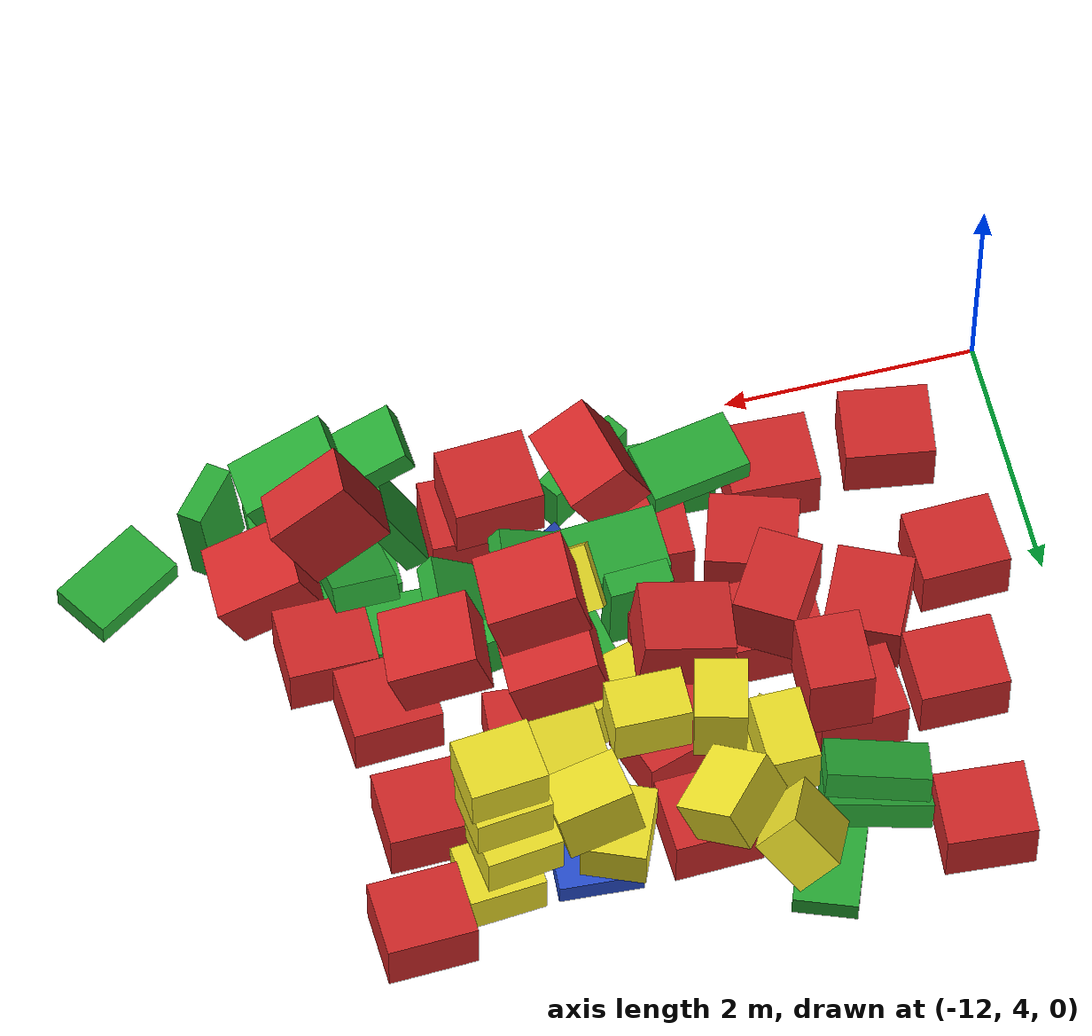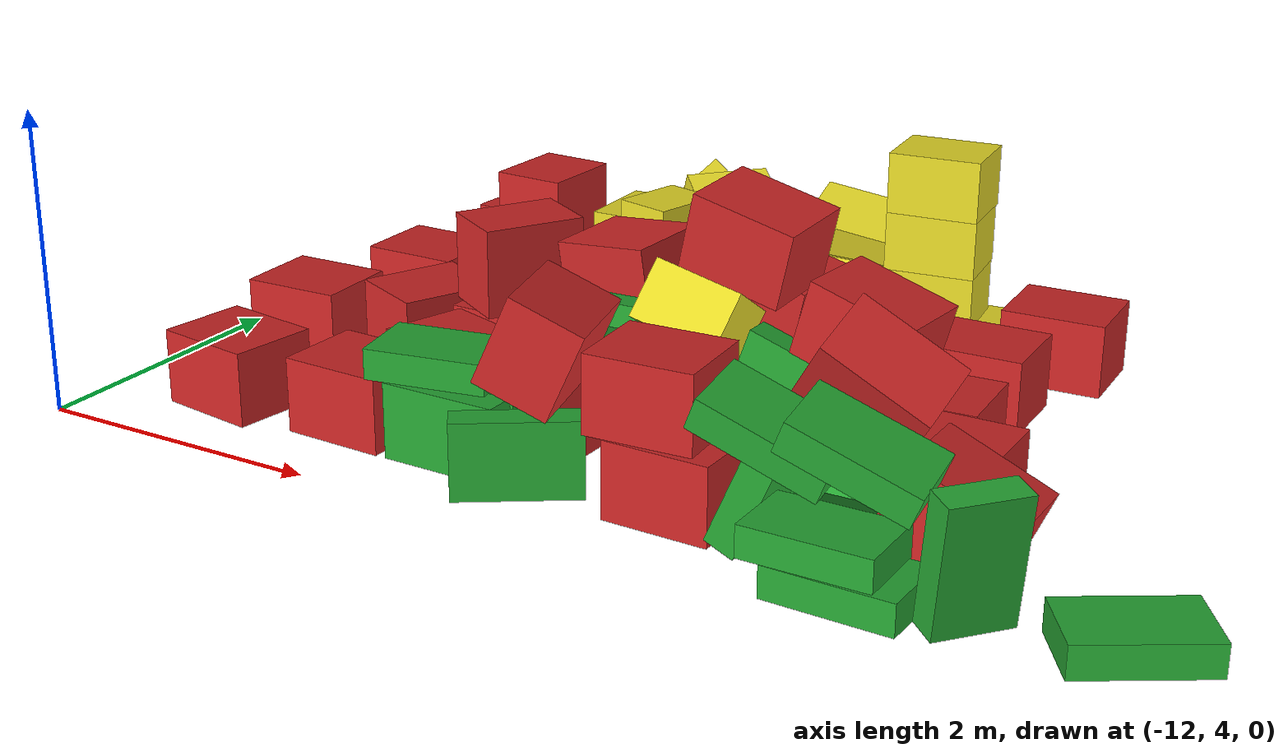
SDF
<sdf version="1.6">
 <world name="default">
  <model name="baggage_A_clone_17">
   <static>0</static>
   <link name="link">
    <collision name="collision"><geometry><box><size>0.7 0.6 0.5</size></box></geometry></collision>
    <visual name="visual">
     <geometry><box><size>0.7 0.6 0.5</size></box></geometry>
     <material>
      <script><uri>file://media/materials/scripts/gazebo.material</uri><name>Gazebo/Red</name></script>
     </material>
    </visual>
    <inertial>
     <inertia><ixx>1</ixx><ixy>0</ixy><ixz>0</ixz><iyy>1</iyy><iyz>0</iyz><izz>1</izz></inertia>
     <mass>1</mass>
    </inertial>
   </link>
   <pose>-9.79374 6.12698 0.249929 5e-06 -8e-06 -0.018931</pose>
  </model>
  <model name="baggage_A_clone_18">
   <static>0</static>
   <link name="link">
    <collision name="collision"><geometry><box><size>0.7 0.6 0.5</size></box></geometry></collision>
    <visual name="visual">
     <geometry><box><size>0.7 0.6 0.5</size></box></geometry>
     <material>
      <script><uri>file://media/materials/scripts/gazebo.material</uri><name>Gazebo/Red</name></script>
     </material>
    </visual>
    <inertial>
     <inertia><ixx>1</ixx><ixy>0</ixy><ixz>0</ixz><iyy>1</iyy><iyz>0</iyz><izz>1</izz></inertia>
     <mass>1</mass>
    </inertial>
   </link>
   <pose>-8.80249 6.86566 0.249981 0 1e-06 0.308612</pose>
  </model>
  <model name="baggage_A_clone_19">
   <static>0</static>
   <link name="link">
    <collision name="collision"><geometry><box><size>0.7 0.6 0.5</size></box></geometry></collision>
    <visual name="visual">
     <geometry><box><size>0.7 0.6 0.5</size></box></geometry>
     <material>
      <script><uri>file://media/materials/scripts/gazebo.material</uri><name>Gazebo/Red</name></script>
     </material>
    </visual>
    <inertial>
     <inertia><ixx>1</ixx><ixy>0</ixy><ixz>0</ixz><iyy>1</iyy><iyz>0</iyz><izz>1</izz></inertia>
     <mass>1</mass>
    </inertial>
   </link>
   <pose>-8.91154 7.62588 0.249957 -2.1e-05 -7.6e-05 0.033002</pose>
  </model>
  <model name="baggage_A_clone_25">
   <static>0</static>
   <link name="link">
    <collision name="collision"><geometry><box><size>0.7 0.6 0.5</size></box></geometry></collision>
    <visual name="visual">
     <geometry><box><size>0.7 0.6 0.5</size></box></geometry>
     <material>
      <script><uri>file://media/materials/scripts/gazebo.material</uri><name>Gazebo/Red</name></script>
     </material>
    </visual>
    <inertial>
     <inertia><ixx>1</ixx><ixy>0</ixy><ixz>0</ixz><iyy>1</iyy><iyz>0</iyz><izz>1</izz></inertia>
     <mass>1</mass>
    </inertial>
   </link>
   <pose>-10.2258 6.91814 0.24999 -2e-06 -0 0.043237</pose>
  </model>
  <model name="baggage_A_clone_26">
   <static>0</static>
   <link name="link">
    <collision name="collision"><geometry><box><size>0.7 0.6 0.5</size></box></geometry></collision>
    <visual name="visual">
     <geometry><box><size>0.7 0.6 0.5</size></box></geometry>
     <material>
      <script><uri>file://media/materials/scripts/gazebo.material</uri><name>Gazebo/Red</name></script>
     </material>
    </visual>
    <inertial>
     <inertia><ixx>1</ixx><ixy>0</ixy><ixz>0</ixz><iyy>1</iyy><iyz>0</iyz><izz>1</izz></inertia>
     <mass>1</mass>
    </inertial>
   </link>
   <pose>-10.126 4.78046 0.249901 -1e-05 2.6e-05 -0.041728</pose>
  </model>
  <model name="baggage_A_clone_27">
   <static>0</static>
   <link name="link">
    <collision name="collision"><geometry><box><size>0.7 0.6 0.5</size></box></geometry></collision>
    <visual name="visual">
     <geometry><box><size>0.7 0.6 0.5</size></box></geometry>
     <material>
      <script><uri>file://media/materials/scripts/gazebo.material</uri><name>Gazebo/Red</name></script>
     </material>
    </visual>
    <inertial>
     <inertia><ixx>1</ixx><ixy>0</ixy><ixz>0</ixz><iyy>1</iyy><iyz>0</iyz><izz>1</izz></inertia>
     <mass>1</mass>
    </inertial>
   </link>
   <pose>-9.02698 5.1596 0.249131 -0.000162 0.000222 -0.046116</pose>
  </model>
  <model name="baggage_A_clone_28">
   <static>0</static>
   <link name="link">
    <collision name="collision"><geometry><box><size>0.7 0.6 0.5</size></box></geometry></collision>
    <visual name="visual">
     <geometry><box><size>0.7 0.6 0.5</size></box></geometry>
     <material>
      <script><uri>file://media/materials/scripts/gazebo.material</uri><name>Gazebo/Red</name></script>
     </material>
    </visual>
    <inertial>
     <inertia><ixx>1</ixx><ixy>0</ixy><ixz>0</ixz><iyy>1</iyy><iyz>0</iyz><izz>1</izz></inertia>
     <mass>1</mass>
    </inertial>
   </link>
   <pose>-6.45215 5.49884 0.250311 3.4e-05 3.4e-05 0.002134</pose>
  </model>
  <model name="baggage_A_clone_29">
   <static>0</static>
   <link name="link">
    <collision name="collision"><geometry><box><size>0.7 0.6 0.5</size></box></geometry></collision>
    <visual name="visual">
     <geometry><box><size>0.7 0.6 0.5</size></box></geometry>
     <material>
      <script><uri>file://media/materials/scripts/gazebo.material</uri><name>Gazebo/Red</name></script>
     </material>
    </visual>
    <inertial>
     <inertia><ixx>1</ixx><ixy>0</ixy><ixz>0</ixz><iyy>1</iyy><iyz>0</iyz><izz>1</izz></inertia>
     <mass>1</mass>
    </inertial>
   </link>
   <pose>-6.12069 4.83426 0.36845 -0.003386 0.404213 -0.007979</pose>
  </model>
  <model name="baggage_A_clone_30">
   <static>0</static>
   <link name="link">
    <collision name="collision"><geometry><box><size>0.7 0.6 0.5</size></box></geometry></collision>
    <visual name="visual">
     <geometry><box><size>0.7 0.6 0.5</size></box></geometry>
     <material>
      <script><uri>file://media/materials/scripts/gazebo.material</uri><name>Gazebo/Red</name></script>
     </material>
    </visual>
    <inertial>
     <inertia><ixx>1</ixx><ixy>0</ixy><ixz>0</ixz><iyy>1</iyy><iyz>0</iyz><izz>1</izz></inertia>
     <mass>1</mass>
    </inertial>
   </link>
   <pose>-8.02816 6.32171 0.824028 0.051436 0.229666 -0.025103</pose>
  </model>
  <model name="baggage_A_clone_31">
   <static>0</static>
   <link name="link">
    <collision name="collision"><geometry><box><size>0.7 0.6 0.5</size></box></geometry></collision>
    <visual name="visual">
     <geometry><box><size>0.7 0.6 0.5</size></box></geometry>
     <material>
      <script><uri>file://media/materials/scripts/gazebo.material</uri><name>Gazebo/Red</name></script>
     </material>
    </visual>
    <inertial>
     <inertia><ixx>1</ixx><ixy>0</ixy><ixz>0</ixz><iyy>1</iyy><iyz>0</iyz><izz>1</izz></inertia>
     <mass>1</mass>
    </inertial>
   </link>
   <pose>-6.8552 7.05261 0.25 0 -0 0.019205</pose>
  </model>
  <model name="baggage_A_clone_32">
   <static>0</static>
   <link name="link">
    <collision name="collision"><geometry><box><size>0.7 0.6 0.5</size></box></geometry></collision>
    <visual name="visual">
     <geometry><box><size>0.7 0.6 0.5</size></box></geometry>
     <material>
      <script><uri>file://media/materials/scripts/gazebo.material</uri><name>Gazebo/Red</name></script>
     </material>
    </visual>
    <inertial>
     <inertia><ixx>1</ixx><ixy>0</ixy><ixz>0</ixz><iyy>1</iyy><iyz>0</iyz><izz>1</izz></inertia>
     <mass>1</mass>
    </inertial>
   </link>
   <pose>-6.61565 7.93767 0.25 0 -0 0.036213</pose>
  </model>
  <model name="baggage_A_clone_39">
   <static>0</static>
   <link name="link">
    <collision name="collision"><geometry><box><size>0.7 0.6 0.5</size></box></geometry></collision>
    <visual name="visual">
     <geometry><box><size>0.7 0.6 0.5</size></box></geometry>
     <material>
      <script><uri>file://media/materials/scripts/gazebo.material</uri><name>Gazebo/Red</name></script>
     </material>
    </visual>
    <inertial>
     <inertia><ixx>1</ixx><ixy>0</ixy><ixz>0</ixz><iyy>1</iyy><iyz>0</iyz><izz>1</izz></inertia>
     <mass>1</mass>
    </inertial>
   </link>
   <pose>-10.9255 8.11501 0.249979 -1e-06 -6e-06 -0.077838</pose>
  </model>
  <model name="baggage_A_clone_40">
   <static>0</static>
   <link name="link">
    <collision name="collision"><geometry><box><size>0.7 0.6 0.5</size></box></geometry></collision>
    <visual name="visual">
     <geometry><box><size>0.7 0.6 0.5</size></box></geometry>
     <material>
      <script><uri>file://media/materials/scripts/gazebo.material</uri><name>Gazebo/Red</name></script>
     </material>
    </visual>
    <inertial>
     <inertia><ixx>1</ixx><ixy>0</ixy><ixz>0</ixz><iyy>1</iyy><iyz>0</iyz><izz>1</izz></inertia>
     <mass>1</mass>
    </inertial>
   </link>
   <pose>-11.0467 6.86079 0.250001 -1e-06 1e-06 -0.008004</pose>
  </model>
  <model name="baggage_A_clone_41">
   <static>0</static>
   <link name="link">
    <collision name="collision"><geometry><box><size>0.7 0.6 0.5</size></box></geometry></collision>
    <visual name="visual">
     <geometry><box><size>0.7 0.6 0.5</size></box></geometry>
     <material>
      <script><uri>file://media/materials/scripts/gazebo.material</uri><name>Gazebo/Red</name></script>
     </material>
    </visual>
    <inertial>
     <inertia><ixx>1</ixx><ixy>0</ixy><ixz>0</ixz><iyy>1</iyy><iyz>0</iyz><izz>1</izz></inertia>
     <mass>1</mass>
    </inertial>
   </link>
   <pose>-11.3272 5.84974 0.249945 1e-06 -1e-06 0.026746</pose>
  </model>
  <model name="baggage_A_clone_42">
   <static>0</static>
   <link name="link">
    <collision name="collision"><geometry><box><size>0.7 0.6 0.5</size></box></geometry></collision>
    <visual name="visual">
     <geometry><box><size>0.7 0.6 0.5</size></box></geometry>
     <material>
      <script><uri>file://media/materials/scripts/gazebo.material</uri><name>Gazebo/Red</name></script>
     </material>
    </visual>
    <inertial>
     <inertia><ixx>1</ixx><ixy>0</ixy><ixz>0</ixz><iyy>1</iyy><iyz>0</iyz><izz>1</izz></inertia>
     <mass>1</mass>
    </inertial>
   </link>
   <pose>-6.79574 6.10009 0.25 0 -0 0.047969</pose>
  </model>
  <model name="baggage_B_clone_45">
   <static>0</static>
   <link name="link">
    <collision name="collision"><geometry><box><size>0.65 0.45 0.2</size></box></geometry></collision>
    <visual name="visual">
     <geometry><box><size>0.65 0.45 0.2</size></box></geometry>
     <material>
      <script><uri>file://media/materials/scripts/gazebo.material</uri><name>Gazebo/Blue</name></script>
     </material>
    </visual>
    <inertial>
     <inertia><ixx>1</ixx><ixy>0</ixy><ixz>0</ixz><iyy>1</iyy><iyz>0</iyz><izz>1</izz></inertia>
     <mass>1</mass>
    </inertial>
   </link>
   <pose>-8.01894 7.69114 0.100031 9e-05 3.7e-05 -0.06603</pose>
  </model>
  <model name="baggage_C_clone_37">
   <static>0</static>
   <link name="link">
    <collision name="collision"><geometry><box><size>0.6 0.5 0.4</size></box></geometry></collision>
    <visual name="visual">
     <geometry><box><size>0.6 0.5 0.4</size></box></geometry>
     <material>
      <script><uri>file://media/materials/scripts/gazebo.material</uri><name>Gazebo/Yellow</name></script>
     </material>
    </visual>
    <inertial>
     <inertia><ixx>1</ixx><ixy>0</ixy><ixz>0</ixz><iyy>1</iyy><iyz>0</iyz><izz>1</izz></inertia>
     <mass>1</mass>
    </inertial>
   </link>
   <pose>-9.50047 8.10353 0.635157 2.40941 -0.51568 1.15252</pose>
  </model>
  <model name="baggage_D_clone_27">
   <static>0</static>
   <link name="link">
    <collision name="collision"><geometry><box><size>0.8 0.5 0.2</size></box></geometry></collision>
    <visual name="visual">
     <geometry><box><size>0.8 0.5 0.2</size></box></geometry>
     <material>
      <script><uri>file://media/materials/scripts/gazebo.material</uri><name>Gazebo/Green</name></script>
     </material>
    </visual>
    <inertial>
     <inertia><ixx>1</ixx><ixy>0</ixy><ixz>0</ixz><iyy>1</iyy><iyz>0</iyz><izz>1</izz></inertia>
     <mass>1</mass>
    </inertial>
   </link>
   <pose>-9.72905 8.12186 0.1 3.14159 0 1.20134</pose>
  </model>
  <model name="baggage_D_clone_34">
   <static>0</static>
   <link name="link">
    <collision name="collision"><geometry><box><size>0.8 0.5 0.2</size></box></geometry></collision>
    <visual name="visual">
     <geometry><box><size>0.8 0.5 0.2</size></box></geometry>
     <material>
      <script><uri>file://media/materials/scripts/gazebo.material</uri><name>Gazebo/Green</name></script>
     </material>
    </visual>
    <inertial>
     <inertia><ixx>1</ixx><ixy>0</ixy><ixz>0</ixz><iyy>1</iyy><iyz>0</iyz><izz>1</izz></inertia>
     <mass>1</mass>
    </inertial>
   </link>
   <pose>-10.1821 7.75333 0.253972 0.491393 -0.123812 -0.189772</pose>
  </model>
  <model name="baggage_D_clone_38">
   <static>0</static>
   <link name="link">
    <collision name="collision"><geometry><box><size>0.8 0.5 0.2</size></box></geometry></collision>
    <visual name="visual">
     <geometry><box><size>0.8 0.5 0.2</size></box></geometry>
     <material>
      <script><uri>file://media/materials/scripts/gazebo.material</uri><name>Gazebo/Green</name></script>
     </material>
    </visual>
    <inertial>
     <inertia><ixx>1</ixx><ixy>0</ixy><ixz>0</ixz><iyy>1</iyy><iyz>0</iyz><izz>1</izz></inertia>
     <mass>1</mass>
    </inertial>
   </link>
   <pose>-10.2224 7.59342 0.392592 -2.64298 -0.086966 -0.258376</pose>
  </model>
  <model name="baggage_D_clone_72">
   <static>0</static>
   <link name="link">
    <collision name="collision"><geometry><box><size>0.8 0.5 0.2</size></box></geometry></collision>
    <visual name="visual">
     <geometry><box><size>0.8 0.5 0.2</size></box></geometry>
     <material>
      <script><uri>file://media/materials/scripts/gazebo.material</uri><name>Gazebo/Green</name></script>
     </material>
    </visual>
    <inertial>
     <inertia><ixx>1</ixx><ixy>0</ixy><ixz>0</ixz><iyy>1</iyy><iyz>0</iyz><izz>1</izz></inertia>
     <mass>1</mass>
    </inertial>
   </link>
   <pose>-5.8446 4.26692 0.409243 -3.14157 1.44749 2.44253</pose>
  </model>
  <model name="baggage_D_clone_73">
   <static>0</static>
   <link name="link">
    <collision name="collision"><geometry><box><size>0.8 0.5 0.2</size></box></geometry></collision>
    <visual name="visual">
     <geometry><box><size>0.8 0.5 0.2</size></box></geometry>
     <material>
      <script><uri>file://media/materials/scripts/gazebo.material</uri><name>Gazebo/Green</name></script>
     </material>
    </visual>
    <inertial>
     <inertia><ixx>1</ixx><ixy>0</ixy><ixz>0</ixz><iyy>1</iyy><iyz>0</iyz><izz>1</izz></inertia>
     <mass>1</mass>
    </inertial>
   </link>
   <pose>-6.53134 4.25563 0.09976 2.6e-05 7e-06 -0.035317</pose>
  </model>
  <model name="baggage_D_clone_75">
   <static>0</static>
   <link name="link">
    <collision name="collision"><geometry><box><size>0.8 0.5 0.2</size></box></geometry></collision>
    <visual name="visual">
     <geometry><box><size>0.8 0.5 0.2</size></box></geometry>
     <material>
      <script><uri>file://media/materials/scripts/gazebo.material</uri><name>Gazebo/Green</name></script>
     </material>
    </visual>
    <inertial>
     <inertia><ixx>1</ixx><ixy>0</ixy><ixz>0</ixz><iyy>1</iyy><iyz>0</iyz><izz>1</izz></inertia>
     <mass>1</mass>
    </inertial>
   </link>
   <pose>-6.68105 4.27055 0.299088 -0.000121 -9.7e-05 -0.009279</pose>
  </model>
  <model name="baggage_D_clone_76">
   <static>0</static>
   <link name="link">
    <collision name="collision"><geometry><box><size>0.8 0.5 0.2</size></box></geometry></collision>
    <visual name="visual">
     <geometry><box><size>0.8 0.5 0.2</size></box></geometry>
     <material>
      <script><uri>file://media/materials/scripts/gazebo.material</uri><name>Gazebo/Green</name></script>
     </material>
    </visual>
    <inertial>
     <inertia><ixx>1</ixx><ixy>0</ixy><ixz>0</ixz><iyy>1</iyy><iyz>0</iyz><izz>1</izz></inertia>
     <mass>1</mass>
    </inertial>
   </link>
   <pose>-6.46549 4.24148 0.866223 0.1181 0.374763 0.115239</pose>
  </model>
  <model name="baggage_D_clone_77">
   <static>0</static>
   <link name="link">
    <collision name="collision"><geometry><box><size>0.8 0.5 0.2</size></box></geometry></collision>
    <visual name="visual">
     <geometry><box><size>0.8 0.5 0.2</size></box></geometry>
     <material>
      <script><uri>file://media/materials/scripts/gazebo.material</uri><name>Gazebo/Green</name></script>
     </material>
    </visual>
    <inertial>
     <inertia><ixx>1</ixx><ixy>0</ixy><ixz>0</ixz><iyy>1</iyy><iyz>0</iyz><izz>1</izz></inertia>
     <mass>1</mass>
    </inertial>
   </link>
   <pose>-5.05103 4.4563 0.1 0 -0 0.557178</pose>
  </model>
  <model name="baggage_D_clone_78">
   <static>0</static>
   <link name="link">
    <collision name="collision"><geometry><box><size>0.8 0.5 0.2</size></box></geometry></collision>
    <visual name="visual">
     <geometry><box><size>0.8 0.5 0.2</size></box></geometry>
     <material>
      <script><uri>file://media/materials/scripts/gazebo.material</uri><name>Gazebo/Green</name></script>
     </material>
    </visual>
    <inertial>
     <inertia><ixx>1</ixx><ixy>0</ixy><ixz>0</ixz><iyy>1</iyy><iyz>0</iyz><izz>1</izz></inertia>
     <mass>1</mass>
    </inertial>
   </link>
   <pose>-6.99034 4.27414 0.865581 0.112009 0.376617 0.098773</pose>
  </model>
  <model name="baggage_D_clone_80">
   <static>0</static>
   <link name="link">
    <collision name="collision"><geometry><box><size>0.8 0.5 0.2</size></box></geometry></collision>
    <visual name="visual">
     <geometry><box><size>0.8 0.5 0.2</size></box></geometry>
     <material>
      <script><uri>file://media/materials/scripts/gazebo.material</uri><name>Gazebo/Green</name></script>
     </material>
    </visual>
    <inertial>
     <inertia><ixx>1</ixx><ixy>0</ixy><ixz>0</ixz><iyy>1</iyy><iyz>0</iyz><izz>1</izz></inertia>
     <mass>1</mass>
    </inertial>
   </link>
   <pose>-6.80167 5.07915 0.53176 -3.13726 0.686763 -1.56184</pose>
  </model>
  <model name="baggage_D_clone_81">
   <static>0</static>
   <link name="link">
    <collision name="collision"><geometry><box><size>0.8 0.5 0.2</size></box></geometry></collision>
    <visual name="visual">
     <geometry><box><size>0.8 0.5 0.2</size></box></geometry>
     <material>
      <script><uri>file://media/materials/scripts/gazebo.material</uri><name>Gazebo/Green</name></script>
     </material>
    </visual>
    <inertial>
     <inertia><ixx>1</ixx><ixy>0</ixy><ixz>0</ixz><iyy>1</iyy><iyz>0</iyz><izz>1</izz></inertia>
     <mass>1</mass>
    </inertial>
   </link>
   <pose>-6.76092 4.79099 0.099187 -3.7e-05 -0.000137 0.001588</pose>
  </model>
  <model name="baggage_D_clone_86">
   <static>0</static>
   <link name="link">
    <collision name="collision"><geometry><box><size>0.8 0.5 0.2</size></box></geometry></collision>
    <visual name="visual">
     <geometry><box><size>0.8 0.5 0.2</size></box></geometry>
     <material>
      <script><uri>file://media/materials/scripts/gazebo.material</uri><name>Gazebo/Green</name></script>
     </material>
    </visual>
    <inertial>
     <inertia><ixx>1</ixx><ixy>0</ixy><ixz>0</ixz><iyy>1</iyy><iyz>0</iyz><izz>1</izz></inertia>
     <mass>1</mass>
    </inertial>
   </link>
   <pose>-7.18007 4.57877 0.412936 0.062757 -1.16169 -0.08233</pose>
  </model>
  <model name="baggage_D_clone_89">
   <static>0</static>
   <link name="link">
    <collision name="collision"><geometry><box><size>0.8 0.5 0.2</size></box></geometry></collision>
    <visual name="visual">
     <geometry><box><size>0.8 0.5 0.2</size></box></geometry>
     <material>
      <script><uri>file://media/materials/scripts/gazebo.material</uri><name>Gazebo/Green</name></script>
     </material>
    </visual>
    <inertial>
     <inertia><ixx>1</ixx><ixy>0</ixy><ixz>0</ixz><iyy>1</iyy><iyz>0</iyz><izz>1</izz></inertia>
     <mass>1</mass>
    </inertial>
   </link>
   <pose>-8.83949 5.74676 0.404808 -3.14159 1.51657 -1.52454</pose>
  </model>
  <model name="baggage_D_clone_90">
   <static>0</static>
   <link name="link">
    <collision name="collision"><geometry><box><size>0.8 0.5 0.2</size></box></geometry></collision>
    <visual name="visual">
     <geometry><box><size>0.8 0.5 0.2</size></box></geometry>
     <material>
      <script><uri>file://media/materials/scripts/gazebo.material</uri><name>Gazebo/Green</name></script>
     </material>
    </visual>
    <inertial>
     <inertia><ixx>1</ixx><ixy>0</ixy><ixz>0</ixz><iyy>1</iyy><iyz>0</iyz><izz>1</izz></inertia>
     <mass>1</mass>
    </inertial>
   </link>
   <pose>-7.2047 5.36885 0.097957 -0.000311 -0.000197 -0.026045</pose>
  </model>
  <model name="baggage_D_clone_91">
   <static>0</static>
   <link name="link">
    <collision name="collision"><geometry><box><size>0.8 0.5 0.2</size></box></geometry></collision>
    <visual name="visual">
     <geometry><box><size>0.8 0.5 0.2</size></box></geometry>
     <material>
      <script><uri>file://media/materials/scripts/gazebo.material</uri><name>Gazebo/Green</name></script>
     </material>
    </visual>
    <inertial>
     <inertia><ixx>1</ixx><ixy>0</ixy><ixz>0</ixz><iyy>1</iyy><iyz>0</iyz><izz>1</izz></inertia>
     <mass>1</mass>
    </inertial>
   </link>
   <pose>-8.73669 4.45472 0.249892 1.57078 2.6e-05 0.583875</pose>
  </model>
  <model name="baggage_D_clone_92">
   <static>0</static>
   <link name="link">
    <collision name="collision"><geometry><box><size>0.8 0.5 0.2</size></box></geometry></collision>
    <visual name="visual">
     <geometry><box><size>0.8 0.5 0.2</size></box></geometry>
     <material>
      <script><uri>file://media/materials/scripts/gazebo.material</uri><name>Gazebo/Green</name></script>
     </material>
    </visual>
    <inertial>
     <inertia><ixx>1</ixx><ixy>0</ixy><ixz>0</ixz><iyy>1</iyy><iyz>0</iyz><izz>1</izz></inertia>
     <mass>1</mass>
    </inertial>
   </link>
   <pose>-9.49599 4.77107 0.600153 -9.4e-05 -0.000201 0.177264</pose>
  </model>
  <model name="baggage_D_clone_93">
   <static>0</static>
   <link name="link">
    <collision name="collision"><geometry><box><size>0.8 0.5 0.2</size></box></geometry></collision>
    <visual name="visual">
     <geometry><box><size>0.8 0.5 0.2</size></box></geometry>
     <material>
      <script><uri>file://media/materials/scripts/gazebo.material</uri><name>Gazebo/Green</name></script>
     </material>
    </visual>
    <inertial>
     <inertia><ixx>1</ixx><ixy>0</ixy><ixz>0</ixz><iyy>1</iyy><iyz>0</iyz><izz>1</izz></inertia>
     <mass>1</mass>
    </inertial>
   </link>
   <pose>-9.31718 4.56122 0.250024 1.57079 -2.1e-05 -0.017956</pose>
  </model>
  <model name="baggage_D_clone_94">
   <static>0</static>
   <link name="link">
    <collision name="collision"><geometry><box><size>0.8 0.5 0.2</size></box></geometry></collision>
    <visual name="visual">
     <geometry><box><size>0.8 0.5 0.2</size></box></geometry>
     <material>
      <script><uri>file://media/materials/scripts/gazebo.material</uri><name>Gazebo/Green</name></script>
     </material>
    </visual>
    <inertial>
     <inertia><ixx>1</ixx><ixy>0</ixy><ixz>0</ixz><iyy>1</iyy><iyz>0</iyz><izz>1</izz></inertia>
     <mass>1</mass>
    </inertial>
   </link>
   <pose>-9.29352 4.76446 0.25005 1.57079 -0.00048 -0.028089</pose>
  </model>
  <model name="baggage_D_clone_96">
   <static>0</static>
   <link name="link">
    <collision name="collision"><geometry><box><size>0.8 0.5 0.2</size></box></geometry></collision>
    <visual name="visual">
     <geometry><box><size>0.8 0.5 0.2</size></box></geometry>
     <material>
      <script><uri>file://media/materials/scripts/gazebo.material</uri><name>Gazebo/Green</name></script>
     </material>
    </visual>
    <inertial>
     <inertia><ixx>1</ixx><ixy>0</ixy><ixz>0</ixz><iyy>1</iyy><iyz>0</iyz><izz>1</izz></inertia>
     <mass>1</mass>
    </inertial>
   </link>
   <pose>-8.18563 5.93408 0.099977 -3.14159 5e-06 0.178343</pose>
  </model>
  <model name="baggage_D_clone_97">
   <static>0</static>
   <link name="link">
    <collision name="collision"><geometry><box><size>0.8 0.5 0.2</size></box></geometry></collision>
    <visual name="visual">
     <geometry><box><size>0.8 0.5 0.2</size></box></geometry>
     <material>
      <script><uri>file://media/materials/scripts/gazebo.material</uri><name>Gazebo/Green</name></script>
     </material>
    </visual>
    <inertial>
     <inertia><ixx>1</ixx><ixy>0</ixy><ixz>0</ixz><iyy>1</iyy><iyz>0</iyz><izz>1</izz></inertia>
     <mass>1</mass>
    </inertial>
   </link>
   <pose>-7.63393 5.36525 0.306216 -1.3e-05 -0.592793 -0.072801</pose>
  </model>
  <model name="baggage_D_clone_98">
   <static>0</static>
   <link name="link">
    <collision name="collision"><geometry><box><size>0.8 0.5 0.2</size></box></geometry></collision>
    <visual name="visual">
     <geometry><box><size>0.8 0.5 0.2</size></box></geometry>
     <material>
      <script><uri>file://media/materials/scripts/gazebo.material</uri><name>Gazebo/Green</name></script>
     </material>
    </visual>
    <inertial>
     <inertia><ixx>1</ixx><ixy>0</ixy><ixz>0</ixz><iyy>1</iyy><iyz>0</iyz><izz>1</izz></inertia>
     <mass>1</mass>
    </inertial>
   </link>
   <pose>-7.59301 5.8588 0.407098 1.52029 0.318562 0.006301</pose>
  </model>
  <model name="baggage_D_clone_99">
   <static>0</static>
   <link name="link">
    <collision name="collision"><geometry><box><size>0.8 0.5 0.2</size></box></geometry></collision>
    <visual name="visual">
     <geometry><box><size>0.8 0.5 0.2</size></box></geometry>
     <material>
      <script><uri>file://media/materials/scripts/gazebo.material</uri><name>Gazebo/Green</name></script>
     </material>
    </visual>
    <inertial>
     <inertia><ixx>1</ixx><ixy>0</ixy><ixz>0</ixz><iyy>1</iyy><iyz>0</iyz><izz>1</izz></inertia>
     <mass>1</mass>
    </inertial>
   </link>
   <pose>-8.72064 5.39824 0.613863 -0.239325 0.028164 0.04451</pose>
  </model>
  <model name="baggage_D_clone_100">
   <static>0</static>
   <link name="link">
    <collision name="collision"><geometry><box><size>0.8 0.5 0.2</size></box></geometry></collision>
    <visual name="visual">
     <geometry><box><size>0.8 0.5 0.2</size></box></geometry>
     <material>
      <script><uri>file://media/materials/scripts/gazebo.material</uri><name>Gazebo/Green</name></script>
     </material>
    </visual>
    <inertial>
     <inertia><ixx>1</ixx><ixy>0</ixy><ixz>0</ixz><iyy>1</iyy><iyz>0</iyz><izz>1</izz></inertia>
     <mass>1</mass>
    </inertial>
   </link>
   <pose>-8.21367 5.30948 0.457808 -0.168576 -0.427365 -0.050748</pose>
  </model>
  <model name="baggage_A_clone_48">
   <static>0</static>
   <link name="link">
    <collision name="collision"><geometry><box><size>0.7 0.6 0.5</size></box></geometry></collision>
    <visual name="visual">
     <geometry><box><size>0.7 0.6 0.5</size></box></geometry>
     <material>
      <script><uri>file://media/materials/scripts/gazebo.material</uri><name>Gazebo/Red</name></script>
     </material>
    </visual>
    <inertial>
     <inertia><ixx>1</ixx><ixy>0</ixy><ixz>0</ixz><iyy>1</iyy><iyz>0</iyz><izz>1</izz></inertia>
     <mass>1</mass>
    </inertial>
   </link>
   <pose>-9.83435 5.4089 0.25 0 -0 2.82319</pose>
  </model>
  <model name="baggage_A_clone_49">
   <static>0</static>
   <link name="link">
    <collision name="collision"><geometry><box><size>0.7 0.6 0.5</size></box></geometry></collision>
    <visual name="visual">
     <geometry><box><size>0.7 0.6 0.5</size></box></geometry>
     <material>
      <script><uri>file://media/materials/scripts/gazebo.material</uri><name>Gazebo/Red</name></script>
     </material>
    </visual>
    <inertial>
     <inertia><ixx>1</ixx><ixy>0</ixy><ixz>0</ixz><iyy>1</iyy><iyz>0</iyz><izz>1</izz></inertia>
     <mass>1</mass>
    </inertial>
   </link>
   <pose>-7.80598 6.60664 0.249933 3.14158 -5e-06 3.06313</pose>
  </model>
  <model name="baggage_A_clone_50">
   <static>0</static>
   <link name="link">
    <collision name="collision"><geometry><box><size>0.7 0.6 0.5</size></box></geometry></collision>
    <visual name="visual">
     <geometry><box><size>0.7 0.6 0.5</size></box></geometry>
     <material>
      <script><uri>file://media/materials/scripts/gazebo.material</uri><name>Gazebo/Red</name></script>
     </material>
    </visual>
    <inertial>
     <inertia><ixx>1</ixx><ixy>0</ixy><ixz>0</ixz><iyy>1</iyy><iyz>0</iyz><izz>1</izz></inertia>
     <mass>1</mass>
    </inertial>
   </link>
   <pose>-10.0465 6.93898 0.849999 -1.71113 -1.57079 1.65582</pose>
  </model>
  <model name="baggage_A_clone_55">
   <static>0</static>
   <link name="link">
    <collision name="collision"><geometry><box><size>0.7 0.6 0.5</size></box></geometry></collision>
    <visual name="visual">
     <geometry><box><size>0.7 0.6 0.5</size></box></geometry>
     <material>
      <script><uri>file://media/materials/scripts/gazebo.material</uri><name>Gazebo/Red</name></script>
     </material>
    </visual>
    <inertial>
     <inertia><ixx>1</ixx><ixy>0</ixy><ixz>0</ixz><iyy>1</iyy><iyz>0</iyz><izz>1</izz></inertia>
     <mass>1</mass>
    </inertial>
   </link>
   <pose>-9.81796 6.15641 0.799954 -1.57072 8.3e-05 -2.12298</pose>
  </model>
  <model name="baggage_A_clone_59">
   <static>0</static>
   <link name="link">
    <collision name="collision"><geometry><box><size>0.7 0.6 0.5</size></box></geometry></collision>
    <visual name="visual">
     <geometry><box><size>0.7 0.6 0.5</size></box></geometry>
     <material>
      <script><uri>file://media/materials/scripts/gazebo.material</uri><name>Gazebo/Red</name></script>
     </material>
    </visual>
    <inertial>
     <inertia><ixx>1</ixx><ixy>0</ixy><ixz>0</ixz><iyy>1</iyy><iyz>0</iyz><izz>1</izz></inertia>
     <mass>1</mass>
    </inertial>
   </link>
   <pose>-11.0852 4.73088 0.25 0 0 -0.151542</pose>
  </model>
  <model name="baggage_A_clone_60">
   <static>0</static>
   <link name="link">
    <collision name="collision"><geometry><box><size>0.7 0.6 0.5</size></box></geometry></collision>
    <visual name="visual">
     <geometry><box><size>0.7 0.6 0.5</size></box></geometry>
     <material>
      <script><uri>file://media/materials/scripts/gazebo.material</uri><name>Gazebo/Red</name></script>
     </material>
    </visual>
    <inertial>
     <inertia><ixx>1</ixx><ixy>0</ixy><ixz>0</ixz><iyy>1</iyy><iyz>0</iyz><izz>1</izz></inertia>
     <mass>1</mass>
    </inertial>
   </link>
   <pose>-10.5598 6.14085 0.25 3.14159 -0 -2.00763</pose>
  </model>
  <model name="baggage_A_clone_61">
   <static>0</static>
   <link name="link">
    <collision name="collision"><geometry><box><size>0.7 0.6 0.5</size></box></geometry></collision>
    <visual name="visual">
     <geometry><box><size>0.7 0.6 0.5</size></box></geometry>
     <material>
      <script><uri>file://media/materials/scripts/gazebo.material</uri><name>Gazebo/Red</name></script>
     </material>
    </visual>
    <inertial>
     <inertia><ixx>1</ixx><ixy>0</ixy><ixz>0</ixz><iyy>1</iyy><iyz>0</iyz><izz>1</izz></inertia>
     <mass>1</mass>
    </inertial>
   </link>
   <pose>-8.71675 4.76114 0.875165 -1.15693 -0.000327 1.80096</pose>
  </model>
  <model name="baggage_A_clone_67">
   <static>0</static>
   <link name="link">
    <collision name="collision"><geometry><box><size>0.7 0.6 0.5</size></box></geometry></collision>
    <visual name="visual">
     <geometry><box><size>0.7 0.6 0.5</size></box></geometry>
     <material>
      <script><uri>file://media/materials/scripts/gazebo.material</uri><name>Gazebo/Red</name></script>
     </material>
    </visual>
    <inertial>
     <inertia><ixx>1</ixx><ixy>0</ixy><ixz>0</ixz><iyy>1</iyy><iyz>0</iyz><izz>1</izz></inertia>
     <mass>1</mass>
    </inertial>
   </link>
   <pose>-9.04003 6.31724 0.807019 0.054522 -0.123372 -0.154612</pose>
  </model>
  <model name="baggage_A_clone_68">
   <static>0</static>
   <link name="link">
    <collision name="collision"><geometry><box><size>0.7 0.6 0.5</size></box></geometry></collision>
    <visual name="visual">
     <geometry><box><size>0.7 0.6 0.5</size></box></geometry>
     <material>
      <script><uri>file://media/materials/scripts/gazebo.material</uri><name>Gazebo/Red</name></script>
     </material>
    </visual>
    <inertial>
     <inertia><ixx>1</ixx><ixy>0</ixy><ixz>0</ixz><iyy>1</iyy><iyz>0</iyz><izz>1</izz></inertia>
     <mass>1</mass>
    </inertial>
   </link>
   <pose>-7.95212 5.97708 1.30034 0.050503 0.229877 -0.029433</pose>
  </model>
  <model name="baggage_A_clone_69">
   <static>0</static>
   <link name="link">
    <collision name="collision"><geometry><box><size>0.7 0.6 0.5</size></box></geometry></collision>
    <visual name="visual">
     <geometry><box><size>0.7 0.6 0.5</size></box></geometry>
     <material>
      <script><uri>file://media/materials/scripts/gazebo.material</uri><name>Gazebo/Red</name></script>
     </material>
    </visual>
    <inertial>
     <inertia><ixx>1</ixx><ixy>0</ixy><ixz>0</ixz><iyy>1</iyy><iyz>0</iyz><izz>1</izz></inertia>
     <mass>1</mass>
    </inertial>
   </link>
   <pose>-7.19032 6.01885 0.83346 -9.5e-05 0.266805 -0.099646</pose>
  </model>
  <model name="baggage_A_clone_70">
   <static>0</static>
   <link name="link">
    <collision name="collision"><geometry><box><size>0.7 0.6 0.5</size></box></geometry></collision>
    <visual name="visual">
     <geometry><box><size>0.7 0.6 0.5</size></box></geometry>
     <material>
      <script><uri>file://media/materials/scripts/gazebo.material</uri><name>Gazebo/Red</name></script>
     </material>
    </visual>
    <inertial>
     <inertia><ixx>1</ixx><ixy>0</ixy><ixz>0</ixz><iyy>1</iyy><iyz>0</iyz><izz>1</izz></inertia>
     <mass>1</mass>
    </inertial>
   </link>
   <pose>-9.08504 6.16883 0.25 0 -0 0.006496</pose>
  </model>
  <model name="baggage_A_clone_92">
   <static>0</static>
   <link name="link">
    <collision name="collision"><geometry><box><size>0.7 0.6 0.5</size></box></geometry></collision>
    <visual name="visual">
     <geometry><box><size>0.7 0.6 0.5</size></box></geometry>
     <material>
      <script><uri>file://media/materials/scripts/gazebo.material</uri><name>Gazebo/Red</name></script>
     </material>
    </visual>
    <inertial>
     <inertia><ixx>1</ixx><ixy>0</ixy><ixz>0</ixz><iyy>1</iyy><iyz>0</iyz><izz>1</izz></inertia>
     <mass>1</mass>
    </inertial>
   </link>
   <pose>-6.64275 4.76453 0.994011 1.17593 -0.528995 -2.99547</pose>
  </model>
  <model name="baggage_A_clone_99">
   <static>0</static>
   <link name="link">
    <collision name="collision"><geometry><box><size>0.7 0.6 0.5</size></box></geometry></collision>
    <visual name="visual">
     <geometry><box><size>0.7 0.6 0.5</size></box></geometry>
     <material>
      <script><uri>file://media/materials/scripts/gazebo.material</uri><name>Gazebo/Red</name></script>
     </material>
    </visual>
    <inertial>
     <inertia><ixx>1</ixx><ixy>0</ixy><ixz>0</ixz><iyy>1</iyy><iyz>0</iyz><izz>1</izz></inertia>
     <mass>1</mass>
    </inertial>
   </link>
   <pose>-7.93005 4.72174 0.753234 0.000873 0.001149 0.051134</pose>
  </model>
  <model name="baggage_A_clone_100">
   <static>0</static>
   <link name="link">
    <collision name="collision"><geometry><box><size>0.7 0.6 0.5</size></box></geometry></collision>
    <visual name="visual">
     <geometry><box><size>0.7 0.6 0.5</size></box></geometry>
     <material>
      <script><uri>file://media/materials/scripts/gazebo.material</uri><name>Gazebo/Red</name></script>
     </material>
    </visual>
    <inertial>
     <inertia><ixx>1</ixx><ixy>0</ixy><ixz>0</ixz><iyy>1</iyy><iyz>0</iyz><izz>1</izz></inertia>
     <mass>1</mass>
    </inertial>
   </link>
   <pose>-7.77796 4.69313 0.253039 0.000729 0.001234 -0.027216</pose>
  </model>
  <model name="baggage_B_clone_95">
   <static>0</static>
   <link name="link">
    <collision name="collision"><geometry><box><size>0.65 0.45 0.2</size></box></geometry></collision>
    <visual name="visual">
     <geometry><box><size>0.65 0.45 0.2</size></box></geometry>
     <material>
      <script><uri>file://media/materials/scripts/gazebo.material</uri><name>Gazebo/Blue</name></script>
     </material>
    </visual>
    <inertial>
     <inertia><ixx>1</ixx><ixy>0</ixy><ixz>0</ixz><iyy>1</iyy><iyz>0</iyz><izz>1</izz></inertia>
     <mass>1</mass>
    </inertial>
   </link>
   <pose>-8.21923 5.23518 0.248225 0.399953 0.228088 -2.50206</pose>
  </model>
  <model name="baggage_C_clone_46">
   <static>0</static>
   <link name="link">
    <collision name="collision"><geometry><box><size>0.6 0.5 0.4</size></box></geometry></collision>
    <visual name="visual">
     <geometry><box><size>0.6 0.5 0.4</size></box></geometry>
     <material>
      <script><uri>file://media/materials/scripts/gazebo.material</uri><name>Gazebo/Yellow</name></script>
     </material>
    </visual>
    <inertial>
     <inertia><ixx>1</ixx><ixy>0</ixy><ixz>0</ixz><iyy>1</iyy><iyz>0</iyz><izz>1</izz></inertia>
     <mass>1</mass>
    </inertial>
   </link>
   <pose>-9.49424 7.13371 0.197387 -3.14158 -3e-06 -2.36805</pose>
  </model>
  <model name="baggage_C_clone_47">
   <static>0</static>
   <link name="link">
    <collision name="collision"><geometry><box><size>0.6 0.5 0.4</size></box></geometry></collision>
    <visual name="visual">
     <geometry><box><size>0.6 0.5 0.4</size></box></geometry>
     <material>
      <script><uri>file://media/materials/scripts/gazebo.material</uri><name>Gazebo/Yellow</name></script>
     </material>
    </visual>
    <inertial>
     <inertia><ixx>1</ixx><ixy>0</ixy><ixz>0</ixz><iyy>1</iyy><iyz>0</iyz><izz>1</izz></inertia>
     <mass>1</mass>
    </inertial>
   </link>
   <pose>-8.46721 6.43493 0.299941 -2.22571 1.57079 2.74972</pose>
  </model>
  <model name="baggage_C_clone_48">
   <static>0</static>
   <link name="link">
    <collision name="collision"><geometry><box><size>0.6 0.5 0.4</size></box></geometry></collision>
    <visual name="visual">
     <geometry><box><size>0.6 0.5 0.4</size></box></geometry>
     <material>
      <script><uri>file://media/materials/scripts/gazebo.material</uri><name>Gazebo/Yellow</name></script>
     </material>
    </visual>
    <inertial>
     <inertia><ixx>1</ixx><ixy>0</ixy><ixz>0</ixz><iyy>1</iyy><iyz>0</iyz><izz>1</izz></inertia>
     <mass>1</mass>
    </inertial>
   </link>
   <pose>-8.20828 7.62875 0.39932 -0.000189 0.000169 -1.97209</pose>
  </model>
  <model name="baggage_C_clone_54">
   <static>0</static>
   <link name="link">
    <collision name="collision"><geometry><box><size>0.6 0.5 0.4</size></box></geometry></collision>
    <visual name="visual">
     <geometry><box><size>0.6 0.5 0.4</size></box></geometry>
     <material>
      <script><uri>file://media/materials/scripts/gazebo.material</uri><name>Gazebo/Yellow</name></script>
     </material>
    </visual>
    <inertial>
     <inertia><ixx>1</ixx><ixy>0</ixy><ixz>0</ixz><iyy>1</iyy><iyz>0</iyz><izz>1</izz></inertia>
     <mass>1</mass>
    </inertial>
   </link>
   <pose>-9.15601 6.99717 0.799998 2.62132 1.57079 -0.778294</pose>
  </model>
  <model name="baggage_C_clone_64">
   <static>0</static>
   <link name="link">
    <collision name="collision"><geometry><box><size>0.6 0.5 0.4</size></box></geometry></collision>
    <visual name="visual">
     <geometry><box><size>0.6 0.5 0.4</size></box></geometry>
     <material>
      <script><uri>file://media/materials/scripts/gazebo.material</uri><name>Gazebo/Yellow</name></script>
     </material>
    </visual>
    <inertial>
     <inertia><ixx>1</ixx><ixy>0</ixy><ixz>0</ixz><iyy>1</iyy><iyz>0</iyz><izz>1</izz></inertia>
     <mass>1</mass>
    </inertial>
   </link>
   <pose>-9.04459 7.74674 0.792231 -0.475204 2.4e-05 -2.30728</pose>
  </model>
  <model name="baggage_C_clone_78">
   <static>0</static>
   <link name="link">
    <collision name="collision"><geometry><box><size>0.6 0.5 0.4</size></box></geometry></collision>
    <visual name="visual">
     <geometry><box><size>0.6 0.5 0.4</size></box></geometry>
     <material>
      <script><uri>file://media/materials/scripts/gazebo.material</uri><name>Gazebo/Yellow</name></script>
     </material>
    </visual>
    <inertial>
     <inertia><ixx>1</ixx><ixy>0</ixy><ixz>0</ixz><iyy>1</iyy><iyz>0</iyz><izz>1</izz></inertia>
     <mass>1</mass>
    </inertial>
   </link>
   <pose>-9.5663 7.32633 0.650515 -1.57086 -1.8e-05 -1.56336</pose>
  </model>
  <model name="baggage_C_clone_89">
   <static>0</static>
   <link name="link">
    <collision name="collision"><geometry><box><size>0.6 0.5 0.4</size></box></geometry></collision>
    <visual name="visual">
     <geometry><box><size>0.6 0.5 0.4</size></box></geometry>
     <material>
      <script><uri>file://media/materials/scripts/gazebo.material</uri><name>Gazebo/Yellow</name></script>
     </material>
    </visual>
    <inertial>
     <inertia><ixx>1</ixx><ixy>0</ixy><ixz>0</ixz><iyy>1</iyy><iyz>0</iyz><izz>1</izz></inertia>
     <mass>1</mass>
    </inertial>
   </link>
   <pose>-8.61806 6.88844 0.749981 -1.5708 -1e-06 3.12257</pose>
  </model>
  <model name="baggage_C_clone_90">
   <static>0</static>
   <link name="link">
    <collision name="collision"><geometry><box><size>0.6 0.5 0.4</size></box></geometry></collision>
    <visual name="visual">
     <geometry><box><size>0.6 0.5 0.4</size></box></geometry>
     <material>
      <script><uri>file://media/materials/scripts/gazebo.material</uri><name>Gazebo/Yellow</name></script>
     </material>
    </visual>
    <inertial>
     <inertia><ixx>1</ixx><ixy>0</ixy><ixz>0</ixz><iyy>1</iyy><iyz>0</iyz><izz>1</izz></inertia>
     <mass>1</mass>
    </inertial>
   </link>
   <pose>-8.22128 5.70771 0.838049 2.59807 0.217315 -0.025781</pose>
  </model>
  <model name="baggage_C_clone_91">
   <static>0</static>
   <link name="link">
    <collision name="collision"><geometry><box><size>0.6 0.5 0.4</size></box></geometry></collision>
    <visual name="visual">
     <geometry><box><size>0.6 0.5 0.4</size></box></geometry>
     <material>
      <script><uri>file://media/materials/scripts/gazebo.material</uri><name>Gazebo/Yellow</name></script>
     </material>
    </visual>
    <inertial>
     <inertia><ixx>1</ixx><ixy>0</ixy><ixz>0</ixz><iyy>1</iyy><iyz>0</iyz><izz>1</izz></inertia>
     <mass>1</mass>
    </inertial>
   </link>
   <pose>-7.93455 6.9996 0.683237 -0.337208 0.04145 0.039186</pose>
  </model>
  <model name="baggage_C_clone_92">
   <static>0</static>
   <link name="link">
    <collision name="collision"><geometry><box><size>0.6 0.5 0.4</size></box></geometry></collision>
    <visual name="visual">
     <geometry><box><size>0.6 0.5 0.4</size></box></geometry>
     <material>
      <script><uri>file://media/materials/scripts/gazebo.material</uri><name>Gazebo/Yellow</name></script>
     </material>
    </visual>
    <inertial>
     <inertia><ixx>1</ixx><ixy>0</ixy><ixz>0</ixz><iyy>1</iyy><iyz>0</iyz><izz>1</izz></inertia>
     <mass>1</mass>
    </inertial>
   </link>
   <pose>-7.73752 7.16368 0.19937 -1.9e-05 3.6e-05 -0.073215</pose>
  </model>
  <model name="baggage_C_clone_93">
   <static>0</static>
   <link name="link">
    <collision name="collision"><geometry><box><size>0.6 0.5 0.4</size></box></geometry></collision>
    <visual name="visual">
     <geometry><box><size>0.6 0.5 0.4</size></box></geometry>
     <material>
      <script><uri>file://media/materials/scripts/gazebo.material</uri><name>Gazebo/Yellow</name></script>
     </material>
    </visual>
    <inertial>
     <inertia><ixx>1</ixx><ixy>0</ixy><ixz>0</ixz><iyy>1</iyy><iyz>0</iyz><izz>1</izz></inertia>
     <mass>1</mass>
    </inertial>
   </link>
   <pose>-8.00723 7.58075 0.858404 0.294103 0.15123 0.120247</pose>
  </model>
  <model name="baggage_C_clone_94">
   <static>0</static>
   <link name="link">
    <collision name="collision"><geometry><box><size>0.6 0.5 0.4</size></box></geometry></collision>
    <visual name="visual">
     <geometry><box><size>0.6 0.5 0.4</size></box></geometry>
     <material>
      <script><uri>file://media/materials/scripts/gazebo.material</uri><name>Gazebo/Yellow</name></script>
     </material>
    </visual>
    <inertial>
     <inertia><ixx>1</ixx><ixy>0</ixy><ixz>0</ixz><iyy>1</iyy><iyz>0</iyz><izz>1</izz></inertia>
     <mass>1</mass>
    </inertial>
   </link>
   <pose>-7.33957 7.43117 1.39997 5.7e-05 1.8e-05 0.089977</pose>
  </model>
  <model name="baggage_C_clone_95">
   <static>0</static>
   <link name="link">
    <collision name="collision"><geometry><box><size>0.6 0.5 0.4</size></box></geometry></collision>
    <visual name="visual">
     <geometry><box><size>0.6 0.5 0.4</size></box></geometry>
     <material>
      <script><uri>file://media/materials/scripts/gazebo.material</uri><name>Gazebo/Yellow</name></script>
     </material>
    </visual>
    <inertial>
     <inertia><ixx>1</ixx><ixy>0</ixy><ixz>0</ixz><iyy>1</iyy><iyz>0</iyz><izz>1</izz></inertia>
     <mass>1</mass>
    </inertial>
   </link>
   <pose>-7.36075 7.47333 0.999408 1.6e-05 -1.5e-05 0.111255</pose>
  </model>
  <model name="baggage_C_clone_96">
   <static>0</static>
   <link name="link">
    <collision name="collision"><geometry><box><size>0.6 0.5 0.4</size></box></geometry></collision>
    <visual name="visual">
     <geometry><box><size>0.6 0.5 0.4</size></box></geometry>
     <material>
      <script><uri>file://media/materials/scripts/gazebo.material</uri><name>Gazebo/Yellow</name></script>
     </material>
    </visual>
    <inertial>
     <inertia><ixx>1</ixx><ixy>0</ixy><ixz>0</ixz><iyy>1</iyy><iyz>0</iyz><izz>1</izz></inertia>
     <mass>1</mass>
    </inertial>
   </link>
   <pose>-7.40838 7.59646 0.599727 3.4e-05 1e-06 0.120672</pose>
  </model>
  <model name="baggage_C_clone_97">
   <static>0</static>
   <link name="link">
    <collision name="collision"><geometry><box><size>0.6 0.5 0.4</size></box></geometry></collision>
    <visual name="visual">
     <geometry><box><size>0.6 0.5 0.4</size></box></geometry>
     <material>
      <script><uri>file://media/materials/scripts/gazebo.material</uri><name>Gazebo/Yellow</name></script>
     </material>
    </visual>
    <inertial>
     <inertia><ixx>1</ixx><ixy>0</ixy><ixz>0</ixz><iyy>1</iyy><iyz>0</iyz><izz>1</izz></inertia>
     <mass>1</mass>
    </inertial>
   </link>
   <pose>-7.26293 7.68064 0.199967 0 -1.2e-05 0.079743</pose>
  </model>
 </world>
</sdf>
